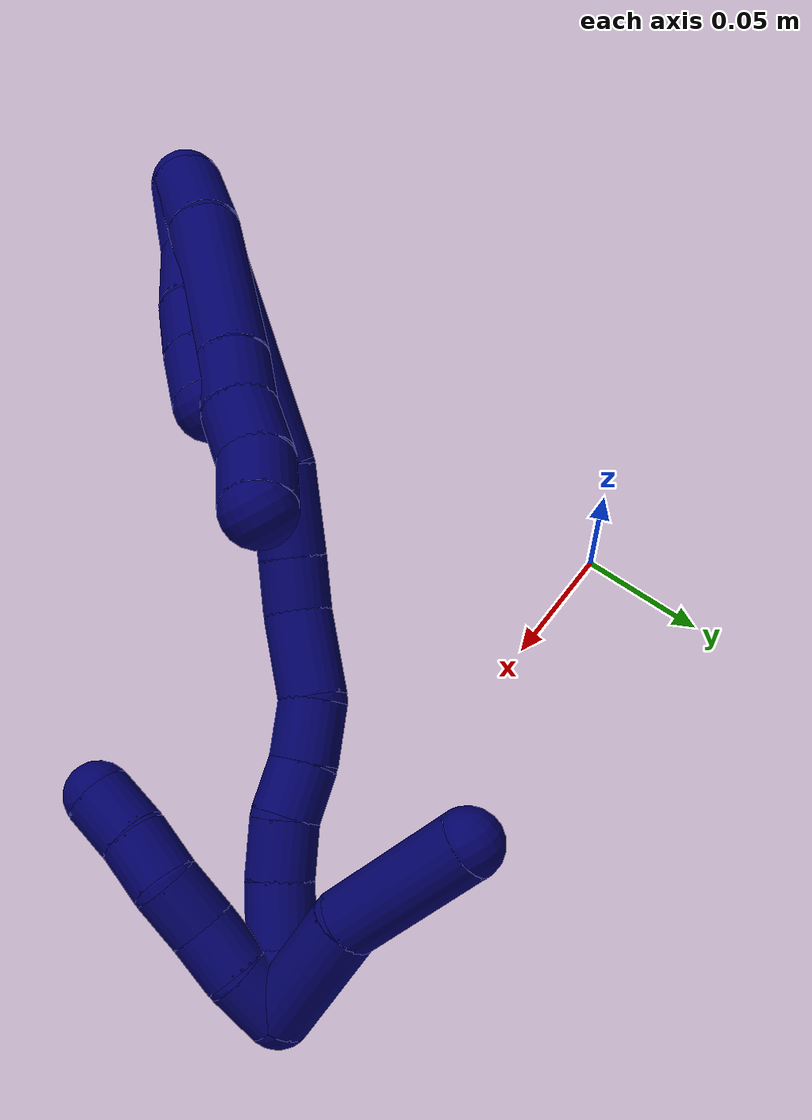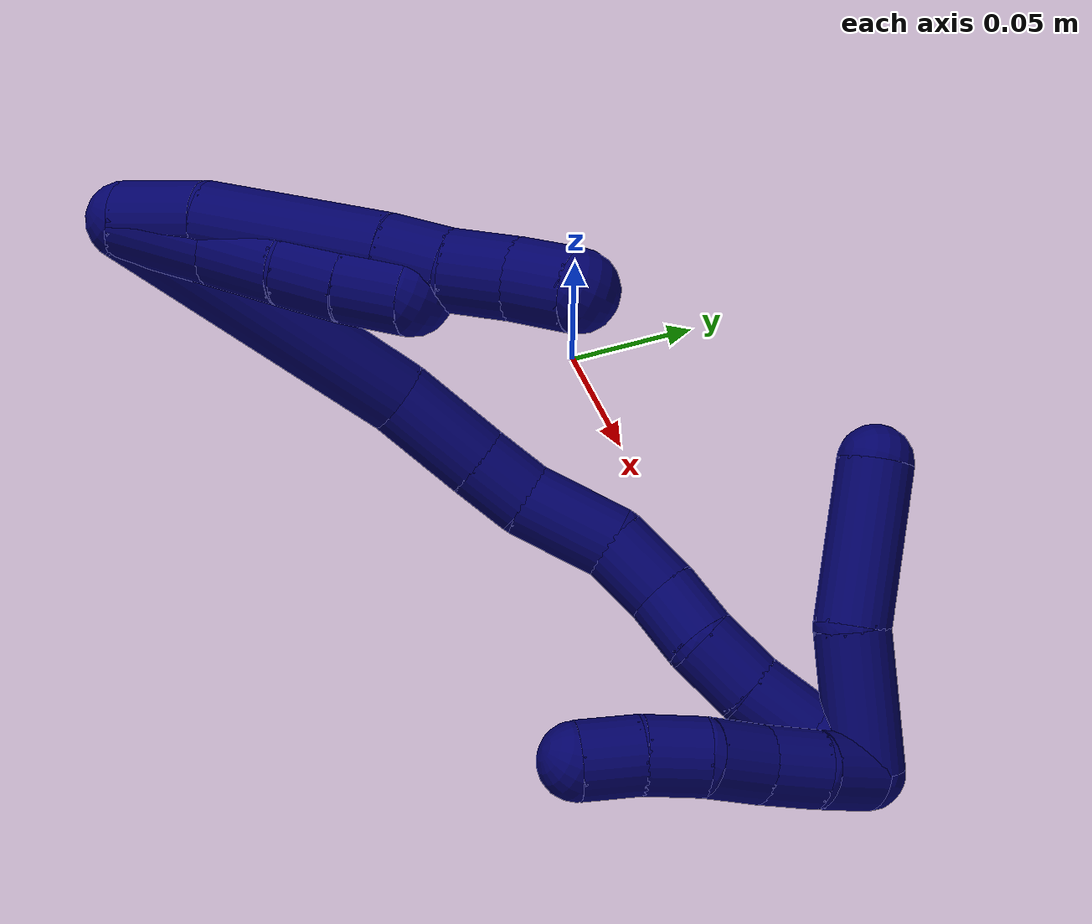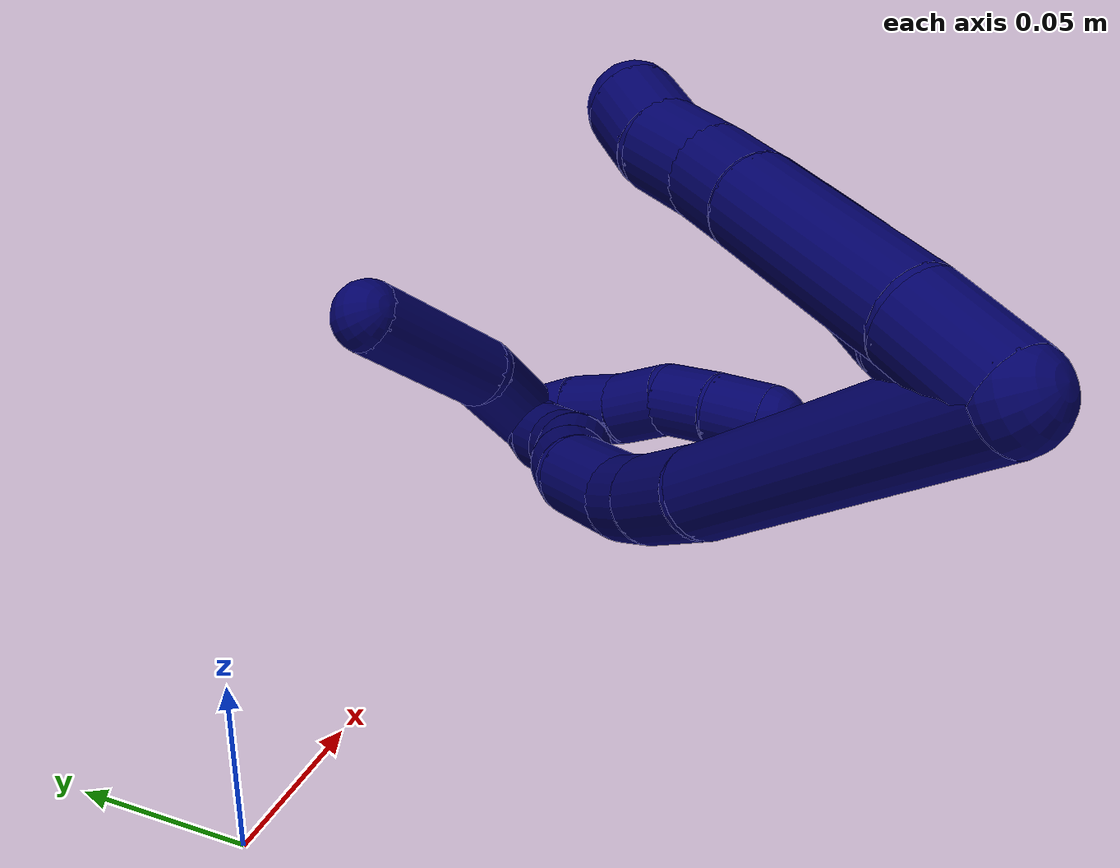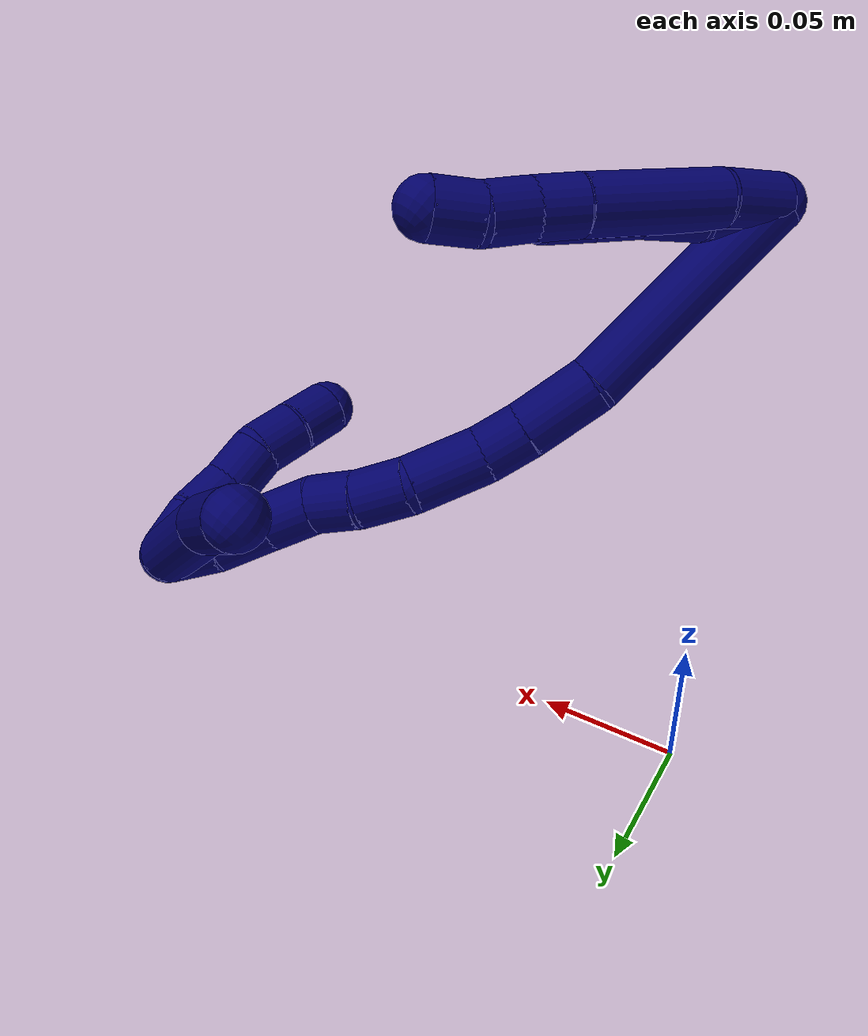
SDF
<sdf version="1.7">
 <world name="default">
  <model name="7">
   <static>0</static>
   <link name="7">
    <collision name="collision-cylinder-e_1_2_8">
     <pose>0.010321 0.001717 0.009401 -0.180671 0.82382 -0.07911</pose>
     <geometry><cylinder><radius>0.0125</radius><length>0.028132</length></cylinder></geometry>
     <surface>
      <friction><ode><mu>1.16</mu><mu2>1.16</mu2><slip1>0</slip1><slip2>0</slip2></ode></friction>
      <contact><ode><kp>1e+06</kp><kd>1</kd><max_vel>0</max_vel><min_depth>0.001</min_depth></ode></contact>
     </surface>
    </collision>
    <visual name="visual-cylinder-e_1_2_8">
     <pose>0.010321 0.001717 0.009401 -0.180671 0.82382 -0.07911</pose>
     <geometry><cylinder><radius>0.0125</radius><length>0.028132</length></cylinder></geometry>
     <material><ambient>0.003922 0 0.403922 1</ambient></material>
    </visual>
    <collision name="collision-cylinder-e_2_8_9">
     <pose>0.040071 0.010564 0.040808 -0.313305 0.698634 -0.114939</pose>
     <geometry><cylinder><radius>0.0125</radius><length>0.060418</length></cylinder></geometry>
     <surface>
      <friction><ode><mu>1.16</mu><mu2>1.16</mu2><slip1>0</slip1><slip2>0</slip2></ode></friction>
      <contact><ode><kp>1e+06</kp><kd>1</kd><max_vel>0</max_vel><min_depth>0.001</min_depth></ode></contact>
     </surface>
    </collision>
    <visual name="visual-cylinder-e_2_8_9">
     <pose>0.040071 0.010564 0.040808 -0.313305 0.698634 -0.114939</pose>
     <geometry><cylinder><radius>0.0125</radius><length>0.060418</length></cylinder></geometry>
     <material><ambient>0.003922 0 0.403922 1</ambient></material>
    </visual>
    <collision name="collision-cylinder-e_3_9_10">
     <pose>0.065629 0.0206 0.070272 -0.371704 0.653385 -0.127244</pose>
     <geometry><cylinder><radius>0.0125</radius><length>0.020162</length></cylinder></geometry>
     <surface>
      <friction><ode><mu>1.16</mu><mu2>1.16</mu2><slip1>0</slip1><slip2>0</slip2></ode></friction>
      <contact><ode><kp>1e+06</kp><kd>1</kd><max_vel>0</max_vel><min_depth>0.001</min_depth></ode></contact>
     </surface>
    </collision>
    <visual name="visual-cylinder-e_3_9_10">
     <pose>0.065629 0.0206 0.070272 -0.371704 0.653385 -0.127244</pose>
     <geometry><cylinder><radius>0.0125</radius><length>0.020162</length></cylinder></geometry>
     <material><ambient>0.003922 0 0.403922 1</ambient></material>
    </visual>
    <collision name="collision-cylinder-e_4_10_11">
     <pose>0.078287 0.025084 0.085801 -0.192826 0.671125 -0.067432</pose>
     <geometry><cylinder><radius>0.0125</radius><length>0.021002</length></cylinder></geometry>
     <surface>
      <friction><ode><mu>1.16</mu><mu2>1.16</mu2><slip1>0</slip1><slip2>0</slip2></ode></friction>
      <contact><ode><kp>1e+06</kp><kd>1</kd><max_vel>0</max_vel><min_depth>0.001</min_depth></ode></contact>
     </surface>
    </collision>
    <visual name="visual-cylinder-e_4_10_11">
     <pose>0.078287 0.025084 0.085801 -0.192826 0.671125 -0.067432</pose>
     <geometry><cylinder><radius>0.0125</radius><length>0.021002</length></cylinder></geometry>
     <material><ambient>0.003922 0 0.403922 1</ambient></material>
    </visual>
    <collision name="collision-cylinder-e_5_11_6">
     <pose>0.092137 0.030006 0.100045 -0.496823 0.806184 -0.215497</pose>
     <geometry><cylinder><radius>0.0125</radius><length>0.020286</length></cylinder></geometry>
     <surface>
      <friction><ode><mu>1.16</mu><mu2>1.16</mu2><slip1>0</slip1><slip2>0</slip2></ode></friction>
      <contact><ode><kp>1e+06</kp><kd>1</kd><max_vel>0</max_vel><min_depth>0.001</min_depth></ode></contact>
     </surface>
    </collision>
    <visual name="visual-cylinder-e_5_11_6">
     <pose>0.092137 0.030006 0.100045 -0.496823 0.806184 -0.215497</pose>
     <geometry><cylinder><radius>0.0125</radius><length>0.020286</length></cylinder></geometry>
     <material><ambient>0.003922 0 0.403922 1</ambient></material>
    </visual>
    <collision name="collision-cylinder-e_1_2_12">
     <pose>0.009477 0.004604 0.012347 -0.356925 0.623478 -0.116124</pose>
     <geometry><cylinder><radius>0.0125</radius><length>0.032464</length></cylinder></geometry>
     <surface>
      <friction><ode><mu>1.16</mu><mu2>1.16</mu2><slip1>0</slip1><slip2>0</slip2></ode></friction>
      <contact><ode><kp>1e+06</kp><kd>1</kd><max_vel>0</max_vel><min_depth>0.001</min_depth></ode></contact>
     </surface>
    </collision>
    <visual name="visual-cylinder-e_1_2_12">
     <pose>0.009477 0.004604 0.012347 -0.356925 0.623478 -0.116124</pose>
     <geometry><cylinder><radius>0.0125</radius><length>0.032464</length></cylinder></geometry>
     <material><ambient>0.003922 0 0.403922 1</ambient></material>
    </visual>
    <collision name="collision-cylinder-e_2_12_13">
     <pose>0.027809 0.014097 0.033196 -0.521856 0.734423 -0.204702</pose>
     <geometry><cylinder><radius>0.0125</radius><length>0.026424</length></cylinder></geometry>
     <surface>
      <friction><ode><mu>1.16</mu><mu2>1.16</mu2><slip1>0</slip1><slip2>0</slip2></ode></friction>
      <contact><ode><kp>1e+06</kp><kd>1</kd><max_vel>0</max_vel><min_depth>0.001</min_depth></ode></contact>
     </surface>
    </collision>
    <visual name="visual-cylinder-e_2_12_13">
     <pose>0.027809 0.014097 0.033196 -0.521856 0.734423 -0.204702</pose>
     <geometry><cylinder><radius>0.0125</radius><length>0.026424</length></cylinder></geometry>
     <material><ambient>0.003922 0 0.403922 1</ambient></material>
    </visual>
    <collision name="collision-cylinder-e_3_13_14">
     <pose>0.042932 0.022105 0.049105 -0.398552 0.662398 -0.138669</pose>
     <geometry><cylinder><radius>0.0125</radius><length>0.020387</length></cylinder></geometry>
     <surface>
      <friction><ode><mu>1.16</mu><mu2>1.16</mu2><slip1>0</slip1><slip2>0</slip2></ode></friction>
      <contact><ode><kp>1e+06</kp><kd>1</kd><max_vel>0</max_vel><min_depth>0.001</min_depth></ode></contact>
     </surface>
    </collision>
    <visual name="visual-cylinder-e_3_13_14">
     <pose>0.042932 0.022105 0.049105 -0.398552 0.662398 -0.138669</pose>
     <geometry><cylinder><radius>0.0125</radius><length>0.020387</length></cylinder></geometry>
     <material><ambient>0.003922 0 0.403922 1</ambient></material>
    </visual>
    <collision name="collision-cylinder-e_4_14_5">
     <pose>0.055875 0.027677 0.064051 -0.314613 0.699722 -0.115621</pose>
     <geometry><cylinder><radius>0.0125</radius><length>0.020725</length></cylinder></geometry>
     <surface>
      <friction><ode><mu>1.16</mu><mu2>1.16</mu2><slip1>0</slip1><slip2>0</slip2></ode></friction>
      <contact><ode><kp>1e+06</kp><kd>1</kd><max_vel>0</max_vel><min_depth>0.001</min_depth></ode></contact>
     </surface>
    </collision>
    <visual name="visual-cylinder-e_4_14_5">
     <pose>0.055875 0.027677 0.064051 -0.314613 0.699722 -0.115621</pose>
     <geometry><cylinder><radius>0.0125</radius><length>0.020725</length></cylinder></geometry>
     <material><ambient>0.003922 0 0.403922 1</ambient></material>
    </visual>
    <collision name="collision-cylinder-e_1_2_15">
     <pose>-0.001428 0.009826 0.050832 -0.190947 -0.027566 0.00264</pose>
     <geometry><cylinder><radius>0.0125</radius><length>0.103585</length></cylinder></geometry>
     <surface>
      <friction><ode><mu>1.16</mu><mu2>1.16</mu2><slip1>0</slip1><slip2>0</slip2></ode></friction>
      <contact><ode><kp>1e+06</kp><kd>1</kd><max_vel>0</max_vel><min_depth>0.001</min_depth></ode></contact>
     </surface>
    </collision>
    <visual name="visual-cylinder-e_1_2_15">
     <pose>-0.001428 0.009826 0.050832 -0.190947 -0.027566 0.00264</pose>
     <geometry><cylinder><radius>0.0125</radius><length>0.103585</length></cylinder></geometry>
     <material><ambient>0.003922 0 0.403922 1</ambient></material>
    </visual>
    <collision name="collision-cylinder-e_2_15_16">
     <pose>-0.002006 0.026003 0.117033 -0.391845 0.050986 -0.010121</pose>
     <geometry><cylinder><radius>0.0125</radius><length>0.033303</length></cylinder></geometry>
     <surface>
      <friction><ode><mu>1.16</mu><mu2>1.16</mu2><slip1>0</slip1><slip2>0</slip2></ode></friction>
      <contact><ode><kp>1e+06</kp><kd>1</kd><max_vel>0</max_vel><min_depth>0.001</min_depth></ode></contact>
     </surface>
    </collision>
    <visual name="visual-cylinder-e_2_15_16">
     <pose>-0.002006 0.026003 0.117033 -0.391845 0.050986 -0.010121</pose>
     <geometry><cylinder><radius>0.0125</radius><length>0.033303</length></cylinder></geometry>
     <material><ambient>0.003922 0 0.403922 1</ambient></material>
    </visual>
    <collision name="collision-cylinder-e_3_16_17">
     <pose>5.6e-05 0.03649 0.141648 -0.420684 0.119233 -0.025485</pose>
     <geometry><cylinder><radius>0.0125</radius><length>0.020401</length></cylinder></geometry>
     <surface>
      <friction><ode><mu>1.16</mu><mu2>1.16</mu2><slip1>0</slip1><slip2>0</slip2></ode></friction>
      <contact><ode><kp>1e+06</kp><kd>1</kd><max_vel>0</max_vel><min_depth>0.001</min_depth></ode></contact>
     </surface>
    </collision>
    <visual name="visual-cylinder-e_3_16_17">
     <pose>5.6e-05 0.03649 0.141648 -0.420684 0.119233 -0.025485</pose>
     <geometry><cylinder><radius>0.0125</radius><length>0.020401</length></cylinder></geometry>
     <material><ambient>0.003922 0 0.403922 1</ambient></material>
    </visual>
    <collision name="collision-cylinder-e_4_17_18">
     <pose>0.006655 0.045829 0.165177 -0.349326 0.340473 -0.060649</pose>
     <geometry><cylinder><radius>0.0125</radius><length>0.032256</length></cylinder></geometry>
     <surface>
      <friction><ode><mu>1.16</mu><mu2>1.16</mu2><slip1>0</slip1><slip2>0</slip2></ode></friction>
      <contact><ode><kp>1e+06</kp><kd>1</kd><max_vel>0</max_vel><min_depth>0.001</min_depth></ode></contact>
     </surface>
    </collision>
    <visual name="visual-cylinder-e_4_17_18">
     <pose>0.006655 0.045829 0.165177 -0.349326 0.340473 -0.060649</pose>
     <geometry><cylinder><radius>0.0125</radius><length>0.032256</length></cylinder></geometry>
     <material><ambient>0.003922 0 0.403922 1</ambient></material>
    </visual>
    <collision name="collision-cylinder-e_5_18_19">
     <pose>0.014616 0.058051 0.188141 -0.679941 0.226757 -0.080507</pose>
     <geometry><cylinder><radius>0.0125</radius><length>0.022912</length></cylinder></geometry>
     <surface>
      <friction><ode><mu>1.16</mu><mu2>1.16</mu2><slip1>0</slip1><slip2>0</slip2></ode></friction>
      <contact><ode><kp>1e+06</kp><kd>1</kd><max_vel>0</max_vel><min_depth>0.001</min_depth></ode></contact>
     </surface>
    </collision>
    <visual name="visual-cylinder-e_5_18_19">
     <pose>0.014616 0.058051 0.188141 -0.679941 0.226757 -0.080507</pose>
     <geometry><cylinder><radius>0.0125</radius><length>0.022912</length></cylinder></geometry>
     <material><ambient>0.003922 0 0.403922 1</ambient></material>
    </visual>
    <collision name="collision-cylinder-e_6_19_20">
     <pose>0.019751 0.072538 0.203185 -0.8651 0.255219 -0.118343</pose>
     <geometry><cylinder><radius>0.0125</radius><length>0.020281</length></cylinder></geometry>
     <surface>
      <friction><ode><mu>1.16</mu><mu2>1.16</mu2><slip1>0</slip1><slip2>0</slip2></ode></friction>
      <contact><ode><kp>1e+06</kp><kd>1</kd><max_vel>0</max_vel><min_depth>0.001</min_depth></ode></contact>
     </surface>
    </collision>
    <visual name="visual-cylinder-e_6_19_20">
     <pose>0.019751 0.072538 0.203185 -0.8651 0.255219 -0.118343</pose>
     <geometry><cylinder><radius>0.0125</radius><length>0.020281</length></cylinder></geometry>
     <material><ambient>0.003922 0 0.403922 1</ambient></material>
    </visual>
    <collision name="collision-cylinder-e_7_20_21">
     <pose>0.024095 0.086129 0.218383 -0.605989 0.164453 -0.051516</pose>
     <geometry><cylinder><radius>0.0125</radius><length>0.021791</length></cylinder></geometry>
     <surface>
      <friction><ode><mu>1.16</mu><mu2>1.16</mu2><slip1>0</slip1><slip2>0</slip2></ode></friction>
      <contact><ode><kp>1e+06</kp><kd>1</kd><max_vel>0</max_vel><min_depth>0.001</min_depth></ode></contact>
     </surface>
    </collision>
    <visual name="visual-cylinder-e_7_20_21">
     <pose>0.024095 0.086129 0.218383 -0.605989 0.164453 -0.051516</pose>
     <geometry><cylinder><radius>0.0125</radius><length>0.021791</length></cylinder></geometry>
     <material><ambient>0.003922 0 0.403922 1</ambient></material>
    </visual>
    <collision name="collision-cylinder-e_8_21_22">
     <pose>0.028832 0.097906 0.237643 -0.497064 0.244064 -0.062228</pose>
     <geometry><cylinder><radius>0.0125</radius><length>0.024444</length></cylinder></geometry>
     <surface>
      <friction><ode><mu>1.16</mu><mu2>1.16</mu2><slip1>0</slip1><slip2>0</slip2></ode></friction>
      <contact><ode><kp>1e+06</kp><kd>1</kd><max_vel>0</max_vel><min_depth>0.001</min_depth></ode></contact>
     </surface>
    </collision>
    <visual name="visual-cylinder-e_8_21_22">
     <pose>0.028832 0.097906 0.237643 -0.497064 0.244064 -0.062228</pose>
     <geometry><cylinder><radius>0.0125</radius><length>0.024444</length></cylinder></geometry>
     <material><ambient>0.003922 0 0.403922 1</ambient></material>
    </visual>
    <collision name="collision-cylinder-e_9_22_1">
     <pose>0.035849 0.108876 0.256178 -0.580072 0.396769 -0.119851</pose>
     <geometry><cylinder><radius>0.0125</radius><length>0.021027</length></cylinder></geometry>
     <surface>
      <friction><ode><mu>1.16</mu><mu2>1.16</mu2><slip1>0</slip1><slip2>0</slip2></ode></friction>
      <contact><ode><kp>1e+06</kp><kd>1</kd><max_vel>0</max_vel><min_depth>0.001</min_depth></ode></contact>
     </surface>
    </collision>
    <visual name="visual-cylinder-e_9_22_1">
     <pose>0.035849 0.108876 0.256178 -0.580072 0.396769 -0.119851</pose>
     <geometry><cylinder><radius>0.0125</radius><length>0.021027</length></cylinder></geometry>
     <material><ambient>0.003922 0 0.403922 1</ambient></material>
    </visual>
    <collision name="collision-cylinder-e_1_1_23">
     <pose>0.048612 0.095402 0.253703 2.08385 0.383487 0.641432</pose>
     <geometry><cylinder><radius>0.0125</radius><length>0.046509</length></cylinder></geometry>
     <surface>
      <friction><ode><mu>1.16</mu><mu2>1.16</mu2><slip1>0</slip1><slip2>0</slip2></ode></friction>
      <contact><ode><kp>1e+06</kp><kd>1</kd><max_vel>0</max_vel><min_depth>0.001</min_depth></ode></contact>
     </surface>
    </collision>
    <visual name="visual-cylinder-e_1_1_23">
     <pose>0.048612 0.095402 0.253703 2.08385 0.383487 0.641432</pose>
     <geometry><cylinder><radius>0.0125</radius><length>0.046509</length></cylinder></geometry>
     <material><ambient>0.003922 0 0.403922 1</ambient></material>
    </visual>
    <collision name="collision-cylinder-e_2_23_4">
     <pose>0.067804 0.052424 0.238629 1.75429 0.403094 0.48191</pose>
     <geometry><cylinder><radius>0.0125</radius><length>0.053491</length></cylinder></geometry>
     <surface>
      <friction><ode><mu>1.16</mu><mu2>1.16</mu2><slip1>0</slip1><slip2>0</slip2></ode></friction>
      <contact><ode><kp>1e+06</kp><kd>1</kd><max_vel>0</max_vel><min_depth>0.001</min_depth></ode></contact>
     </surface>
    </collision>
    <visual name="visual-cylinder-e_2_23_4">
     <pose>0.067804 0.052424 0.238629 1.75429 0.403094 0.48191</pose>
     <geometry><cylinder><radius>0.0125</radius><length>0.053491</length></cylinder></geometry>
     <material><ambient>0.003922 0 0.403922 1</ambient></material>
    </visual>
    <collision name="collision-cylinder-e_1_1_24">
     <pose>0.039641 0.116735 0.254621 -2.8842 -0.02703 0.208127</pose>
     <geometry><cylinder><radius>0.0125</radius><length>0.02</length></cylinder></geometry>
     <surface>
      <friction><ode><mu>1.16</mu><mu2>1.16</mu2><slip1>0</slip1><slip2>0</slip2></ode></friction>
      <contact><ode><kp>1e+06</kp><kd>1</kd><max_vel>0</max_vel><min_depth>0.001</min_depth></ode></contact>
     </surface>
    </collision>
    <visual name="visual-cylinder-e_1_1_24">
     <pose>0.039641 0.116735 0.254621 -2.8842 -0.02703 0.208127</pose>
     <geometry><cylinder><radius>0.0125</radius><length>0.02</length></cylinder></geometry>
     <material><ambient>0.003922 0 0.403922 1</ambient></material>
    </visual>
    <collision name="collision-cylinder-e_2_24_25">
     <pose>0.037263 0.120803 0.235298 -2.98511 -0.21239 1.87328</pose>
     <geometry><cylinder><radius>0.0125</radius><length>0.02</length></cylinder></geometry>
     <surface>
      <friction><ode><mu>1.16</mu><mu2>1.16</mu2><slip1>0</slip1><slip2>0</slip2></ode></friction>
      <contact><ode><kp>1e+06</kp><kd>1</kd><max_vel>0</max_vel><min_depth>0.001</min_depth></ode></contact>
     </surface>
    </collision>
    <visual name="visual-cylinder-e_2_24_25">
     <pose>0.037263 0.120803 0.235298 -2.98511 -0.21239 1.87328</pose>
     <geometry><cylinder><radius>0.0125</radius><length>0.02</length></cylinder></geometry>
     <material><ambient>0.003922 0 0.403922 1</ambient></material>
    </visual>
    <collision name="collision-cylinder-e_3_25_26">
     <pose>0.034403 0.123991 0.21581 -2.97395 -0.075269 0.842621</pose>
     <geometry><cylinder><radius>0.0125</radius><length>0.02</length></cylinder></geometry>
     <surface>
      <friction><ode><mu>1.16</mu><mu2>1.16</mu2><slip1>0</slip1><slip2>0</slip2></ode></friction>
      <contact><ode><kp>1e+06</kp><kd>1</kd><max_vel>0</max_vel><min_depth>0.001</min_depth></ode></contact>
     </surface>
    </collision>
    <visual name="visual-cylinder-e_3_25_26">
     <pose>0.034403 0.123991 0.21581 -2.97395 -0.075269 0.842621</pose>
     <geometry><cylinder><radius>0.0125</radius><length>0.02</length></cylinder></geometry>
     <material><ambient>0.003922 0 0.403922 1</ambient></material>
    </visual>
    <collision name="collision-cylinder-e_4_26_27">
     <pose>0.029739 0.126936 0.196865 -3.00191 -0.401886 2.47997</pose>
     <geometry><cylinder><radius>0.0125</radius><length>0.02</length></cylinder></geometry>
     <surface>
      <friction><ode><mu>1.16</mu><mu2>1.16</mu2><slip1>0</slip1><slip2>0</slip2></ode></friction>
      <contact><ode><kp>1e+06</kp><kd>1</kd><max_vel>0</max_vel><min_depth>0.001</min_depth></ode></contact>
     </surface>
    </collision>
    <visual name="visual-cylinder-e_4_26_27">
     <pose>0.029739 0.126936 0.196865 -3.00191 -0.401886 2.47997</pose>
     <geometry><cylinder><radius>0.0125</radius><length>0.02</length></cylinder></geometry>
     <material><ambient>0.003922 0 0.403922 1</ambient></material>
    </visual>
    <collision name="collision-cylinder-e_5_27_3">
     <pose>0.021404 0.130568 0.179097 -2.87631 -0.458291 2.10238</pose>
     <geometry><cylinder><radius>0.0125</radius><length>0.02</length></cylinder></geometry>
     <surface>
      <friction><ode><mu>1.16</mu><mu2>1.16</mu2><slip1>0</slip1><slip2>0</slip2></ode></friction>
      <contact><ode><kp>1e+06</kp><kd>1</kd><max_vel>0</max_vel><min_depth>0.001</min_depth></ode></contact>
     </surface>
    </collision>
    <visual name="visual-cylinder-e_5_27_3">
     <pose>0.021404 0.130568 0.179097 -2.87631 -0.458291 2.10238</pose>
     <geometry><cylinder><radius>0.0125</radius><length>0.02</length></cylinder></geometry>
     <material><ambient>0.003922 0 0.403922 1</ambient></material>
    </visual>
    <collision name="collision-sphere-3">
     <pose>0.016979 0.13292 0.170443 0 -0 0</pose>
     <geometry><sphere><radius>0.0125</radius></sphere></geometry>
     <surface>
      <friction><ode><mu>1.16</mu><mu2>1.16</mu2><slip1>0</slip1><slip2>0</slip2></ode></friction>
      <contact><ode><kp>1e+06</kp><kd>1</kd><max_vel>0</max_vel><min_depth>0.001</min_depth></ode></contact>
     </surface>
    </collision>
    <visual name="visual-sphere-3">
     <pose>0.016979 0.13292 0.170443 0 -0 0</pose>
     <geometry><sphere><radius>0.0125</radius></sphere></geometry>
     <material><ambient>0.003922 0 0.403922 1</ambient></material>
    </visual>
    <collision name="collision-sphere-27">
     <pose>0.025828 0.128217 0.187751 0 -0 0</pose>
     <geometry><sphere><radius>0.0125</radius></sphere></geometry>
     <surface>
      <friction><ode><mu>1.16</mu><mu2>1.16</mu2><slip1>0</slip1><slip2>0</slip2></ode></friction>
      <contact><ode><kp>1e+06</kp><kd>1</kd><max_vel>0</max_vel><min_depth>0.001</min_depth></ode></contact>
     </surface>
    </collision>
    <visual name="visual-sphere-27">
     <pose>0.025828 0.128217 0.187751 0 -0 0</pose>
     <geometry><sphere><radius>0.0125</radius></sphere></geometry>
     <material><ambient>0.003922 0 0.403922 1</ambient></material>
    </visual>
    <collision name="collision-sphere-26">
     <pose>0.033651 0.125654 0.205979 0 -0 0</pose>
     <geometry><sphere><radius>0.0125</radius></sphere></geometry>
     <surface>
      <friction><ode><mu>1.16</mu><mu2>1.16</mu2><slip1>0</slip1><slip2>0</slip2></ode></friction>
      <contact><ode><kp>1e+06</kp><kd>1</kd><max_vel>0</max_vel><min_depth>0.001</min_depth></ode></contact>
     </surface>
    </collision>
    <visual name="visual-sphere-26">
     <pose>0.033651 0.125654 0.205979 0 -0 0</pose>
     <geometry><sphere><radius>0.0125</radius></sphere></geometry>
     <material><ambient>0.003922 0 0.403922 1</ambient></material>
    </visual>
    <collision name="collision-sphere-25">
     <pose>0.035155 0.122327 0.225642 0 -0 0</pose>
     <geometry><sphere><radius>0.0125</radius></sphere></geometry>
     <surface>
      <friction><ode><mu>1.16</mu><mu2>1.16</mu2><slip1>0</slip1><slip2>0</slip2></ode></friction>
      <contact><ode><kp>1e+06</kp><kd>1</kd><max_vel>0</max_vel><min_depth>0.001</min_depth></ode></contact>
     </surface>
    </collision>
    <visual name="visual-sphere-25">
     <pose>0.035155 0.122327 0.225642 0 -0 0</pose>
     <geometry><sphere><radius>0.0125</radius></sphere></geometry>
     <material><ambient>0.003922 0 0.403922 1</ambient></material>
    </visual>
    <collision name="collision-sphere-24">
     <pose>0.039371 0.11928 0.244954 0 -0 0</pose>
     <geometry><sphere><radius>0.0125</radius></sphere></geometry>
     <surface>
      <friction><ode><mu>1.16</mu><mu2>1.16</mu2><slip1>0</slip1><slip2>0</slip2></ode></friction>
      <contact><ode><kp>1e+06</kp><kd>1</kd><max_vel>0</max_vel><min_depth>0.001</min_depth></ode></contact>
     </surface>
    </collision>
    <visual name="visual-sphere-24">
     <pose>0.039371 0.11928 0.244954 0 -0 0</pose>
     <geometry><sphere><radius>0.0125</radius></sphere></geometry>
     <material><ambient>0.003922 0 0.403922 1</ambient></material>
    </visual>
    <collision name="collision-sphere-4">
     <pose>0.078296 0.028235 0.23414 0 -0 0</pose>
     <geometry><sphere><radius>0.0125</radius></sphere></geometry>
     <surface>
      <friction><ode><mu>1.16</mu><mu2>1.16</mu2><slip1>0</slip1><slip2>0</slip2></ode></friction>
      <contact><ode><kp>1e+06</kp><kd>1</kd><max_vel>0</max_vel><min_depth>0.001</min_depth></ode></contact>
     </surface>
    </collision>
    <visual name="visual-sphere-4">
     <pose>0.078296 0.028235 0.23414 0 -0 0</pose>
     <geometry><sphere><radius>0.0125</radius></sphere></geometry>
     <material><ambient>0.003922 0 0.403922 1</ambient></material>
    </visual>
    <collision name="collision-sphere-23">
     <pose>0.057313 0.076613 0.243118 0 -0 0</pose>
     <geometry><sphere><radius>0.0125</radius></sphere></geometry>
     <surface>
      <friction><ode><mu>1.16</mu><mu2>1.16</mu2><slip1>0</slip1><slip2>0</slip2></ode></friction>
      <contact><ode><kp>1e+06</kp><kd>1</kd><max_vel>0</max_vel><min_depth>0.001</min_depth></ode></contact>
     </surface>
    </collision>
    <visual name="visual-sphere-23">
     <pose>0.057313 0.076613 0.243118 0 -0 0</pose>
     <geometry><sphere><radius>0.0125</radius></sphere></geometry>
     <material><ambient>0.003922 0 0.403922 1</ambient></material>
    </visual>
    <collision name="collision-sphere-1">
     <pose>0.039911 0.11419 0.264288 0 -0 0</pose>
     <geometry><sphere><radius>0.0125</radius></sphere></geometry>
     <surface>
      <friction><ode><mu>1.16</mu><mu2>1.16</mu2><slip1>0</slip1><slip2>0</slip2></ode></friction>
      <contact><ode><kp>1e+06</kp><kd>1</kd><max_vel>0</max_vel><min_depth>0.001</min_depth></ode></contact>
     </surface>
    </collision>
    <visual name="visual-sphere-1">
     <pose>0.039911 0.11419 0.264288 0 -0 0</pose>
     <geometry><sphere><radius>0.0125</radius></sphere></geometry>
     <material><ambient>0.003922 0 0.403922 1</ambient></material>
    </visual>
    <collision name="collision-sphere-22">
     <pose>0.031786 0.103561 0.248067 0 -0 0</pose>
     <geometry><sphere><radius>0.0125</radius></sphere></geometry>
     <surface>
      <friction><ode><mu>1.16</mu><mu2>1.16</mu2><slip1>0</slip1><slip2>0</slip2></ode></friction>
      <contact><ode><kp>1e+06</kp><kd>1</kd><max_vel>0</max_vel><min_depth>0.001</min_depth></ode></contact>
     </surface>
    </collision>
    <visual name="visual-sphere-22">
     <pose>0.031786 0.103561 0.248067 0 -0 0</pose>
     <geometry><sphere><radius>0.0125</radius></sphere></geometry>
     <material><ambient>0.003922 0 0.403922 1</ambient></material>
    </visual>
    <collision name="collision-sphere-21">
     <pose>0.025879 0.092251 0.227218 0 -0 0</pose>
     <geometry><sphere><radius>0.0125</radius></sphere></geometry>
     <surface>
      <friction><ode><mu>1.16</mu><mu2>1.16</mu2><slip1>0</slip1><slip2>0</slip2></ode></friction>
      <contact><ode><kp>1e+06</kp><kd>1</kd><max_vel>0</max_vel><min_depth>0.001</min_depth></ode></contact>
     </surface>
    </collision>
    <visual name="visual-sphere-21">
     <pose>0.025879 0.092251 0.227218 0 -0 0</pose>
     <geometry><sphere><radius>0.0125</radius></sphere></geometry>
     <material><ambient>0.003922 0 0.403922 1</ambient></material>
    </visual>
    <collision name="collision-sphere-6">
     <pose>0.099457 0.033353 0.106217 0 -0 0</pose>
     <geometry><sphere><radius>0.0125</radius></sphere></geometry>
     <surface>
      <friction><ode><mu>1.16</mu><mu2>1.16</mu2><slip1>0</slip1><slip2>0</slip2></ode></friction>
      <contact><ode><kp>1e+06</kp><kd>1</kd><max_vel>0</max_vel><min_depth>0.001</min_depth></ode></contact>
     </surface>
    </collision>
    <visual name="visual-sphere-6">
     <pose>0.099457 0.033353 0.106217 0 -0 0</pose>
     <geometry><sphere><radius>0.0125</radius></sphere></geometry>
     <material><ambient>0.003922 0 0.403922 1</ambient></material>
    </visual>
    <collision name="collision-sphere-11">
     <pose>0.084817 0.026659 0.093872 0 -0 0</pose>
     <geometry><sphere><radius>0.0125</radius></sphere></geometry>
     <surface>
      <friction><ode><mu>1.16</mu><mu2>1.16</mu2><slip1>0</slip1><slip2>0</slip2></ode></friction>
      <contact><ode><kp>1e+06</kp><kd>1</kd><max_vel>0</max_vel><min_depth>0.001</min_depth></ode></contact>
     </surface>
    </collision>
    <visual name="visual-sphere-11">
     <pose>0.084817 0.026659 0.093872 0 -0 0</pose>
     <geometry><sphere><radius>0.0125</radius></sphere></geometry>
     <material><ambient>0.003922 0 0.403922 1</ambient></material>
    </visual>
    <collision name="collision-sphere-10">
     <pose>0.071757 0.023508 0.07773 0 -0 0</pose>
     <geometry><sphere><radius>0.0125</radius></sphere></geometry>
     <surface>
      <friction><ode><mu>1.16</mu><mu2>1.16</mu2><slip1>0</slip1><slip2>0</slip2></ode></friction>
      <contact><ode><kp>1e+06</kp><kd>1</kd><max_vel>0</max_vel><min_depth>0.001</min_depth></ode></contact>
     </surface>
    </collision>
    <visual name="visual-sphere-10">
     <pose>0.071757 0.023508 0.07773 0 -0 0</pose>
     <geometry><sphere><radius>0.0125</radius></sphere></geometry>
     <material><ambient>0.003922 0 0.403922 1</ambient></material>
    </visual>
    <collision name="collision-sphere-9">
     <pose>0.059501 0.017693 0.062814 0 -0 0</pose>
     <geometry><sphere><radius>0.0125</radius></sphere></geometry>
     <surface>
      <friction><ode><mu>1.16</mu><mu2>1.16</mu2><slip1>0</slip1><slip2>0</slip2></ode></friction>
      <contact><ode><kp>1e+06</kp><kd>1</kd><max_vel>0</max_vel><min_depth>0.001</min_depth></ode></contact>
     </surface>
    </collision>
    <visual name="visual-sphere-9">
     <pose>0.059501 0.017693 0.062814 0 -0 0</pose>
     <geometry><sphere><radius>0.0125</radius></sphere></geometry>
     <material><ambient>0.003922 0 0.403922 1</ambient></material>
    </visual>
    <collision name="collision-sphere-2">
     <geometry><sphere><radius>0.0125</radius></sphere></geometry>
     <surface>
      <friction><ode><mu>1.16</mu><mu2>1.16</mu2><slip1>0</slip1><slip2>0</slip2></ode></friction>
      <contact><ode><kp>1e+06</kp><kd>1</kd><max_vel>0</max_vel><min_depth>0.001</min_depth></ode></contact>
     </surface>
    </collision>
    <visual name="visual-sphere-2">
     <geometry><sphere><radius>0.0125</radius></sphere></geometry>
     <material><ambient>0.003922 0 0.403922 1</ambient></material>
    </visual>
    <collision name="collision-sphere-19">
     <pose>0.017191 0.065069 0.196821 0 -0 0</pose>
     <geometry><sphere><radius>0.0125</radius></sphere></geometry>
     <surface>
      <friction><ode><mu>1.16</mu><mu2>1.16</mu2><slip1>0</slip1><slip2>0</slip2></ode></friction>
      <contact><ode><kp>1e+06</kp><kd>1</kd><max_vel>0</max_vel><min_depth>0.001</min_depth></ode></contact>
     </surface>
    </collision>
    <visual name="visual-sphere-19">
     <pose>0.017191 0.065069 0.196821 0 -0 0</pose>
     <geometry><sphere><radius>0.0125</radius></sphere></geometry>
     <material><ambient>0.003922 0 0.403922 1</ambient></material>
    </visual>
    <collision name="collision-sphere-8">
     <pose>0.020642 0.003435 0.018802 0 -0 0</pose>
     <geometry><sphere><radius>0.0125</radius></sphere></geometry>
     <surface>
      <friction><ode><mu>1.16</mu><mu2>1.16</mu2><slip1>0</slip1><slip2>0</slip2></ode></friction>
      <contact><ode><kp>1e+06</kp><kd>1</kd><max_vel>0</max_vel><min_depth>0.001</min_depth></ode></contact>
     </surface>
    </collision>
    <visual name="visual-sphere-8">
     <pose>0.020642 0.003435 0.018802 0 -0 0</pose>
     <geometry><sphere><radius>0.0125</radius></sphere></geometry>
     <material><ambient>0.003922 0 0.403922 1</ambient></material>
    </visual>
    <collision name="collision-sphere-12">
     <pose>0.018954 0.009209 0.024695 0 -0 0</pose>
     <geometry><sphere><radius>0.0125</radius></sphere></geometry>
     <surface>
      <friction><ode><mu>1.16</mu><mu2>1.16</mu2><slip1>0</slip1><slip2>0</slip2></ode></friction>
      <contact><ode><kp>1e+06</kp><kd>1</kd><max_vel>0</max_vel><min_depth>0.001</min_depth></ode></contact>
     </surface>
    </collision>
    <visual name="visual-sphere-12">
     <pose>0.018954 0.009209 0.024695 0 -0 0</pose>
     <geometry><sphere><radius>0.0125</radius></sphere></geometry>
     <material><ambient>0.003922 0 0.403922 1</ambient></material>
    </visual>
    <collision name="collision-sphere-13">
     <pose>0.036663 0.018985 0.041697 0 -0 0</pose>
     <geometry><sphere><radius>0.0125</radius></sphere></geometry>
     <surface>
      <friction><ode><mu>1.16</mu><mu2>1.16</mu2><slip1>0</slip1><slip2>0</slip2></ode></friction>
      <contact><ode><kp>1e+06</kp><kd>1</kd><max_vel>0</max_vel><min_depth>0.001</min_depth></ode></contact>
     </surface>
    </collision>
    <visual name="visual-sphere-13">
     <pose>0.036663 0.018985 0.041697 0 -0 0</pose>
     <geometry><sphere><radius>0.0125</radius></sphere></geometry>
     <material><ambient>0.003922 0 0.403922 1</ambient></material>
    </visual>
    <collision name="collision-sphere-14">
     <pose>0.049201 0.025224 0.056513 0 -0 0</pose>
     <geometry><sphere><radius>0.0125</radius></sphere></geometry>
     <surface>
      <friction><ode><mu>1.16</mu><mu2>1.16</mu2><slip1>0</slip1><slip2>0</slip2></ode></friction>
      <contact><ode><kp>1e+06</kp><kd>1</kd><max_vel>0</max_vel><min_depth>0.001</min_depth></ode></contact>
     </surface>
    </collision>
    <visual name="visual-sphere-14">
     <pose>0.049201 0.025224 0.056513 0 -0 0</pose>
     <geometry><sphere><radius>0.0125</radius></sphere></geometry>
     <material><ambient>0.003922 0 0.403922 1</ambient></material>
    </visual>
    <collision name="collision-sphere-5">
     <pose>0.062548 0.03013 0.071589 0 -0 0</pose>
     <geometry><sphere><radius>0.0125</radius></sphere></geometry>
     <surface>
      <friction><ode><mu>1.16</mu><mu2>1.16</mu2><slip1>0</slip1><slip2>0</slip2></ode></friction>
      <contact><ode><kp>1e+06</kp><kd>1</kd><max_vel>0</max_vel><min_depth>0.001</min_depth></ode></contact>
     </surface>
    </collision>
    <visual name="visual-sphere-5">
     <pose>0.062548 0.03013 0.071589 0 -0 0</pose>
     <geometry><sphere><radius>0.0125</radius></sphere></geometry>
     <material><ambient>0.003922 0 0.403922 1</ambient></material>
    </visual>
    <collision name="collision-sphere-15">
     <pose>-0.002855 0.019652 0.101664 0 -0 0</pose>
     <geometry><sphere><radius>0.0125</radius></sphere></geometry>
     <surface>
      <friction><ode><mu>1.16</mu><mu2>1.16</mu2><slip1>0</slip1><slip2>0</slip2></ode></friction>
      <contact><ode><kp>1e+06</kp><kd>1</kd><max_vel>0</max_vel><min_depth>0.001</min_depth></ode></contact>
     </surface>
    </collision>
    <visual name="visual-sphere-15">
     <pose>-0.002855 0.019652 0.101664 0 -0 0</pose>
     <geometry><sphere><radius>0.0125</radius></sphere></geometry>
     <material><ambient>0.003922 0 0.403922 1</ambient></material>
    </visual>
    <collision name="collision-sphere-16">
     <pose>-0.001158 0.032353 0.132403 0 -0 0</pose>
     <geometry><sphere><radius>0.0125</radius></sphere></geometry>
     <surface>
      <friction><ode><mu>1.16</mu><mu2>1.16</mu2><slip1>0</slip1><slip2>0</slip2></ode></friction>
      <contact><ode><kp>1e+06</kp><kd>1</kd><max_vel>0</max_vel><min_depth>0.001</min_depth></ode></contact>
     </surface>
    </collision>
    <visual name="visual-sphere-16">
     <pose>-0.001158 0.032353 0.132403 0 -0 0</pose>
     <geometry><sphere><radius>0.0125</radius></sphere></geometry>
     <material><ambient>0.003922 0 0.403922 1</ambient></material>
    </visual>
    <collision name="collision-sphere-17">
     <pose>0.001269 0.040626 0.150893 0 -0 0</pose>
     <geometry><sphere><radius>0.0125</radius></sphere></geometry>
     <surface>
      <friction><ode><mu>1.16</mu><mu2>1.16</mu2><slip1>0</slip1><slip2>0</slip2></ode></friction>
      <contact><ode><kp>1e+06</kp><kd>1</kd><max_vel>0</max_vel><min_depth>0.001</min_depth></ode></contact>
     </surface>
    </collision>
    <visual name="visual-sphere-17">
     <pose>0.001269 0.040626 0.150893 0 -0 0</pose>
     <geometry><sphere><radius>0.0125</radius></sphere></geometry>
     <material><ambient>0.003922 0 0.403922 1</ambient></material>
    </visual>
    <collision name="collision-sphere-18">
     <pose>0.01204 0.051032 0.17946 0 -0 0</pose>
     <geometry><sphere><radius>0.0125</radius></sphere></geometry>
     <surface>
      <friction><ode><mu>1.16</mu><mu2>1.16</mu2><slip1>0</slip1><slip2>0</slip2></ode></friction>
      <contact><ode><kp>1e+06</kp><kd>1</kd><max_vel>0</max_vel><min_depth>0.001</min_depth></ode></contact>
     </surface>
    </collision>
    <visual name="visual-sphere-18">
     <pose>0.01204 0.051032 0.17946 0 -0 0</pose>
     <geometry><sphere><radius>0.0125</radius></sphere></geometry>
     <material><ambient>0.003922 0 0.403922 1</ambient></material>
    </visual>
    <collision name="collision-sphere-20">
     <pose>0.022311 0.080007 0.209549 0 -0 0</pose>
     <geometry><sphere><radius>0.0125</radius></sphere></geometry>
     <surface>
      <friction><ode><mu>1.16</mu><mu2>1.16</mu2><slip1>0</slip1><slip2>0</slip2></ode></friction>
      <contact><ode><kp>1e+06</kp><kd>1</kd><max_vel>0</max_vel><min_depth>0.001</min_depth></ode></contact>
     </surface>
    </collision>
    <visual name="visual-sphere-20">
     <pose>0.022311 0.080007 0.209549 0 -0 0</pose>
     <geometry><sphere><radius>0.0125</radius></sphere></geometry>
     <material><ambient>0.003922 0 0.403922 1</ambient></material>
    </visual>
    <inertial>
     <pose>0.029974 0.049163 0.132732 0 -0 0</pose>
     <mass>0.75</mass>
     <inertia>
      <ixx>0.000193</ixx>
      <ixy>0</ixy>
      <ixz>0</ixz>
      <iyy>0.000167</iyy>
      <iyz>0</iyz>
      <izz>-2.5e-05</izz>
     </inertia>
    </inertial>
   </link>
   <pose>0.035285 -0.164269 0.144953 -2.78638 -0.962388 0.824746</pose>
  </model>
 </world>
</sdf>
